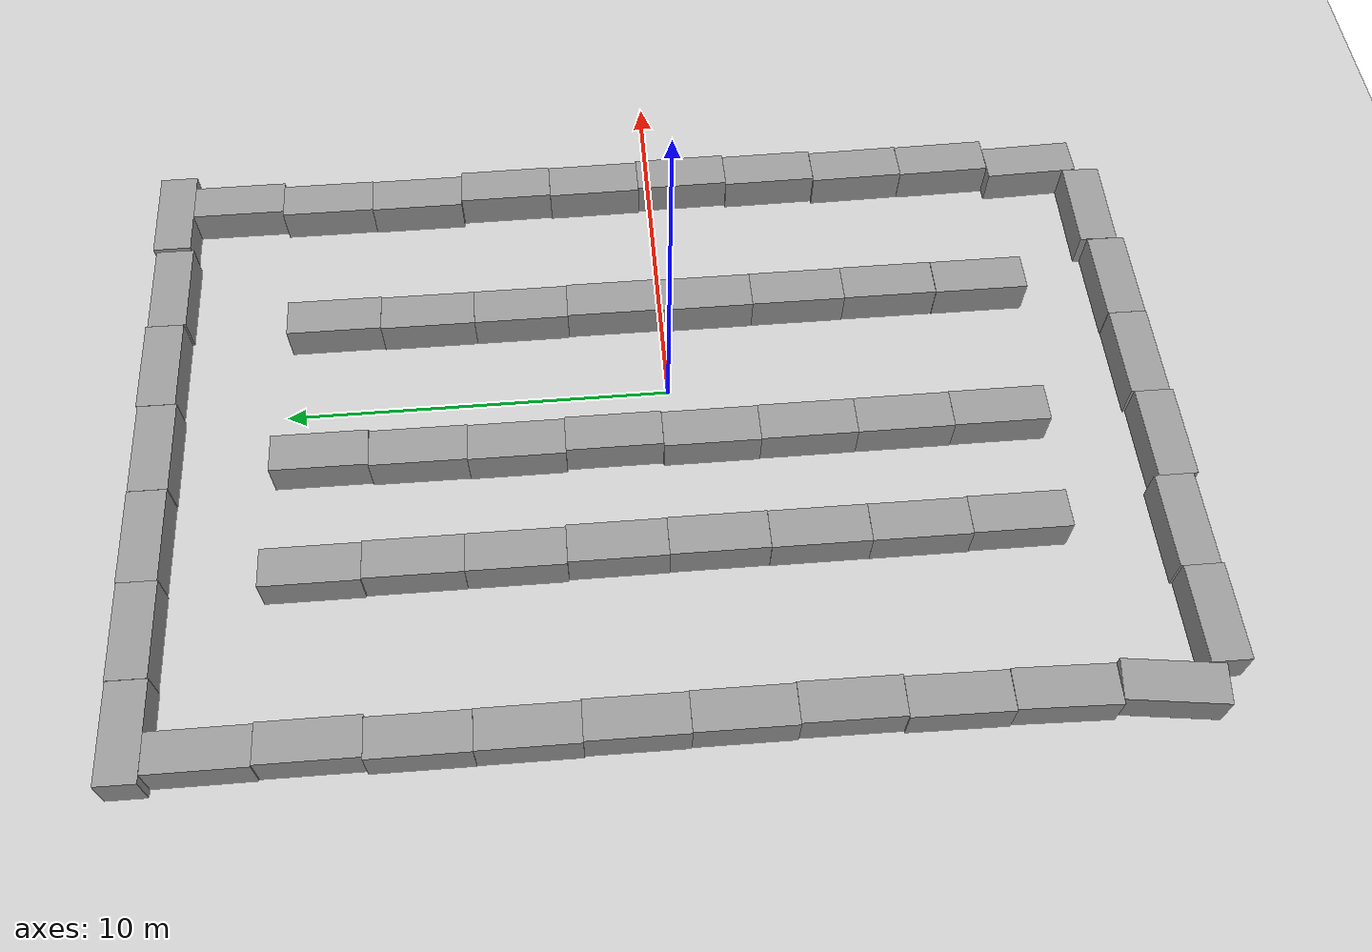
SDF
<sdf version="1.6">
 <world name="default">
  <light name="sun" type="directional">
   <pose>0 0 10 0 -0 0</pose>
   <diffuse>0.8 0.8 0.8 1</diffuse>
   <specular>0.1 0.1 0.1 1</specular>
   <attenuation>
    <range>1000</range>
    <constant>0.9</constant>
    <linear>0.01</linear>
    <quadratic>0.001</quadratic>
   </attenuation>
   <direction>-0.5 0.5 -1</direction>
  </light>
  <model name="ground_plane">
   <static>1</static>
   <link name="link">
    <collision name="collision">
     <geometry><plane><normal>0 0 1</normal><size>100 100</size></plane></geometry>
     <surface><friction><ode><mu>100</mu><mu2>50</mu2></ode></friction></surface>
    </collision>
    <visual name="visual">
     <cast_shadows>0</cast_shadows>
     <geometry><plane><normal>0 0 1</normal><size>100 100</size></plane></geometry>
     <material>
      <script><uri>file://media/materials/scripts/gazebo.material</uri><name>Gazebo/Grey</name></script>
     </material>
    </visual>
   </link>
  </model>
  <gravity>0 0 -9.8</gravity>
  <magnetic_field>6e-06 2.3e-05 -4.2e-05</magnetic_field>
  <atmosphere type="adiabatic"/>
  <physics name="default_physics" default="0" type="ode">
   <max_step_size>0.001</max_step_size>
   <real_time_factor>1</real_time_factor>
   <real_time_update_rate>1000</real_time_update_rate>
  </physics>
  <scene><ambient>0.4 0.4 0.4 1</ambient><background>0.7 0.7 0.7 1</background><shadows>1</shadows></scene>
  <spherical_coordinates>
   <surface_model>EARTH_WGS84</surface_model>
   <latitude_deg>0</latitude_deg>
   <longitude_deg>0</longitude_deg>
   <elevation>0</elevation>
   <heading_deg>0</heading_deg>
  </spherical_coordinates>
  <model name="unit_box_0">
   <pose>2.53274 1.2958 0.499996 0 -9e-06 -0.000531</pose>
   <link name="link">
    <inertial>
     <mass>1</mass>
     <inertia>
      <ixx>0.166667</ixx>
      <ixy>0</ixy>
      <ixz>0</ixz>
      <iyy>0.166667</iyy>
      <iyz>0</iyz>
      <izz>0.166667</izz>
     </inertia>
    </inertial>
    <collision name="collision"><geometry><box><size>1 2.47499 1</size></box></geometry></collision>
    <visual name="visual">
     <geometry><box><size>1 2.47499 1</size></box></geometry>
     <material>
      <script><name>Gazebo/Grey</name><uri>file://media/materials/scripts/gazebo.material</uri></script>
     </material>
    </visual>
   </link>
  </model>
  <model name="unit_box_0_clone">
   <pose>2.5103 -1.17976 0.499941 -4.8e-05 -0 -0.000157</pose>
   <link name="link">
    <inertial>
     <mass>1</mass>
     <inertia>
      <ixx>0.166667</ixx>
      <ixy>0</ixy>
      <ixz>0</ixz>
      <iyy>0.166667</iyy>
      <iyz>0</iyz>
      <izz>0.166667</izz>
     </inertia>
    </inertial>
    <collision name="collision"><geometry><box><size>1 2.47499 1</size></box></geometry></collision>
    <visual name="visual">
     <geometry><box><size>1 2.47499 1</size></box></geometry>
     <material>
      <script><name>Gazebo/Grey</name><uri>file://media/materials/scripts/gazebo.material</uri></script>
     </material>
    </visual>
   </link>
  </model>
  <model name="unit_box_0_clone_0">
   <pose>2.51817 -3.65509 0.499996 -0 -9e-06 0.000139</pose>
   <link name="link">
    <inertial>
     <mass>1</mass>
     <inertia>
      <ixx>0.166667</ixx>
      <ixy>0</ixy>
      <ixz>0</ixz>
      <iyy>0.166667</iyy>
      <iyz>0</iyz>
      <izz>0.166667</izz>
     </inertia>
    </inertial>
    <collision name="collision"><geometry><box><size>1 2.47499 1</size></box></geometry></collision>
    <visual name="visual">
     <geometry><box><size>1 2.47499 1</size></box></geometry>
     <material>
      <script><name>Gazebo/Grey</name><uri>file://media/materials/scripts/gazebo.material</uri></script>
     </material>
    </visual>
   </link>
  </model>
  <model name="unit_box_0_clone_1">
   <pose>2.5284 -6.13075 0.5 0 -0 0.001062</pose>
   <link name="link">
    <inertial>
     <mass>1</mass>
     <inertia>
      <ixx>0.166667</ixx>
      <ixy>0</ixy>
      <ixz>0</ixz>
      <iyy>0.166667</iyy>
      <iyz>0</iyz>
      <izz>0.166667</izz>
     </inertia>
    </inertial>
    <collision name="collision"><geometry><box><size>1 2.47499 1</size></box></geometry></collision>
    <visual name="visual">
     <geometry><box><size>1 2.47499 1</size></box></geometry>
     <material>
      <script><name>Gazebo/Grey</name><uri>file://media/materials/scripts/gazebo.material</uri></script>
     </material>
    </visual>
   </link>
  </model>
  <model name="unit_box_0_clone_2">
   <pose>2.52285 -8.61343 0.499941 -4.8e-05 0 0.000607</pose>
   <link name="link">
    <inertial>
     <mass>1</mass>
     <inertia>
      <ixx>0.166667</ixx>
      <ixy>0</ixy>
      <ixz>0</ixz>
      <iyy>0.166667</iyy>
      <iyz>0</iyz>
      <izz>0.166667</izz>
     </inertia>
    </inertial>
    <collision name="collision"><geometry><box><size>1 2.47499 1</size></box></geometry></collision>
    <visual name="visual">
     <geometry><box><size>1 2.47499 1</size></box></geometry>
     <material>
      <script><name>Gazebo/Grey</name><uri>file://media/materials/scripts/gazebo.material</uri></script>
     </material>
    </visual>
   </link>
  </model>
  <model name="unit_box_0_clone_3">
   <pose>2.50326 3.77082 0.499996 0 9e-06 -0.000504</pose>
   <link name="link">
    <inertial>
     <mass>1</mass>
     <inertia>
      <ixx>0.166667</ixx>
      <ixy>0</ixy>
      <ixz>0</ixz>
      <iyy>0.166667</iyy>
      <iyz>0</iyz>
      <izz>0.166667</izz>
     </inertia>
    </inertial>
    <collision name="collision"><geometry><box><size>1 2.47499 1</size></box></geometry></collision>
    <visual name="visual">
     <geometry><box><size>1 2.47499 1</size></box></geometry>
     <material>
      <script><name>Gazebo/Grey</name><uri>file://media/materials/scripts/gazebo.material</uri></script>
     </material>
    </visual>
   </link>
  </model>
  <model name="unit_box_0_clone_4">
   <pose>2.50069 6.2464 0.499941 4.8e-05 -0 -0.000192</pose>
   <link name="link">
    <inertial>
     <mass>1</mass>
     <inertia>
      <ixx>0.166667</ixx>
      <ixy>0</ixy>
      <ixz>0</ixz>
      <iyy>0.166667</iyy>
      <iyz>0</iyz>
      <izz>0.166667</izz>
     </inertia>
    </inertial>
    <collision name="collision"><geometry><box><size>1 2.47499 1</size></box></geometry></collision>
    <visual name="visual">
     <geometry><box><size>1 2.47499 1</size></box></geometry>
     <material>
      <script><name>Gazebo/Grey</name><uri>file://media/materials/scripts/gazebo.material</uri></script>
     </material>
    </visual>
   </link>
  </model>
  <model name="unit_box_0_clone_5">
   <pose>2.53478 8.72224 0.499996 0 -9e-06 -0.001185</pose>
   <link name="link">
    <inertial>
     <mass>1</mass>
     <inertia>
      <ixx>0.166667</ixx>
      <ixy>0</ixy>
      <ixz>0</ixz>
      <iyy>0.166667</iyy>
      <iyz>0</iyz>
      <izz>0.166667</izz>
     </inertia>
    </inertial>
    <collision name="collision"><geometry><box><size>1 2.47499 1</size></box></geometry></collision>
    <visual name="visual">
     <geometry><box><size>1 2.47499 1</size></box></geometry>
     <material>
      <script><name>Gazebo/Grey</name><uri>file://media/materials/scripts/gazebo.material</uri></script>
     </material>
    </visual>
   </link>
  </model>
  <model name="unit_box_0_clone_6">
   <pose>-1.59223 8.97329 0.49994 4.8e-05 -0 -0.002169</pose>
   <link name="link">
    <inertial>
     <mass>1</mass>
     <inertia>
      <ixx>0.166667</ixx>
      <ixy>0</ixy>
      <ixz>0</ixz>
      <iyy>0.166667</iyy>
      <iyz>0</iyz>
      <izz>0.166667</izz>
     </inertia>
    </inertial>
    <collision name="collision"><geometry><box><size>1 2.47499 1</size></box></geometry></collision>
    <visual name="visual">
     <geometry><box><size>1 2.47499 1</size></box></geometry>
     <material>
      <script><name>Gazebo/Grey</name><uri>file://media/materials/scripts/gazebo.material</uri></script>
     </material>
    </visual>
   </link>
  </model>
  <model name="unit_box_0_clone_7">
   <pose>-1.64276 6.49241 0.499941 -4.8e-05 -0 -0.002144</pose>
   <link name="link">
    <inertial>
     <mass>1</mass>
     <inertia>
      <ixx>0.166667</ixx>
      <ixy>0</ixy>
      <ixz>0</ixz>
      <iyy>0.166667</iyy>
      <iyz>0</iyz>
      <izz>0.166667</izz>
     </inertia>
    </inertial>
    <collision name="collision"><geometry><box><size>1 2.47499 1</size></box></geometry></collision>
    <visual name="visual">
     <geometry><box><size>1 2.47499 1</size></box></geometry>
     <material>
      <script><name>Gazebo/Grey</name><uri>file://media/materials/scripts/gazebo.material</uri></script>
     </material>
    </visual>
   </link>
  </model>
  <model name="unit_box_0_clone_8">
   <pose>-1.66384 4.01631 0.499996 -0 -7e-06 -0.000125</pose>
   <link name="link">
    <inertial>
     <mass>1</mass>
     <inertia>
      <ixx>0.166667</ixx>
      <ixy>0</ixy>
      <ixz>0</ixz>
      <iyy>0.166667</iyy>
      <iyz>0</iyz>
      <izz>0.166667</izz>
     </inertia>
    </inertial>
    <collision name="collision"><geometry><box><size>1 2.47499 1</size></box></geometry></collision>
    <visual name="visual">
     <geometry><box><size>1 2.47499 1</size></box></geometry>
     <material>
      <script><name>Gazebo/Grey</name><uri>file://media/materials/scripts/gazebo.material</uri></script>
     </material>
    </visual>
   </link>
  </model>
  <model name="unit_box_0_clone_9">
   <pose>-1.60487 1.5413 0.499962 -3e-05 -0 -8.2e-05</pose>
   <link name="link">
    <inertial>
     <mass>1</mass>
     <inertia>
      <ixx>0.166667</ixx>
      <ixy>0</ixy>
      <ixz>0</ixz>
      <iyy>0.166667</iyy>
      <iyz>0</iyz>
      <izz>0.166667</izz>
     </inertia>
    </inertial>
    <collision name="collision"><geometry><box><size>0.96663 2.47499 1</size></box></geometry></collision>
    <visual name="visual">
     <geometry><box><size>0.96663 2.47499 1</size></box></geometry>
     <material>
      <script><name>Gazebo/Grey</name><uri>file://media/materials/scripts/gazebo.material</uri></script>
     </material>
    </visual>
   </link>
  </model>
  <model name="unit_box_0_clone_10">
   <pose>-1.658 -0.933845 0.5 0 0 -8.2e-05</pose>
   <link name="link">
    <inertial>
     <mass>1</mass>
     <inertia>
      <ixx>0.166667</ixx>
      <ixy>0</ixy>
      <ixz>0</ixz>
      <iyy>0.166667</iyy>
      <iyz>0</iyz>
      <izz>0.166667</izz>
     </inertia>
    </inertial>
    <collision name="collision"><geometry><box><size>1 2.47499 1</size></box></geometry></collision>
    <visual name="visual">
     <geometry><box><size>1 2.47499 1</size></box></geometry>
     <material>
      <script><name>Gazebo/Grey</name><uri>file://media/materials/scripts/gazebo.material</uri></script>
     </material>
    </visual>
   </link>
  </model>
  <model name="unit_box_0_clone_11">
   <pose>-1.6432 -3.409 0.5 0 -0 0.000234</pose>
   <link name="link">
    <inertial>
     <mass>1</mass>
     <inertia>
      <ixx>0.166667</ixx>
      <ixy>0</ixy>
      <ixz>0</ixz>
      <iyy>0.166667</iyy>
      <iyz>0</iyz>
      <izz>0.166667</izz>
     </inertia>
    </inertial>
    <collision name="collision"><geometry><box><size>1 2.47499 1</size></box></geometry></collision>
    <visual name="visual">
     <geometry><box><size>1 2.47499 1</size></box></geometry>
     <material>
      <script><name>Gazebo/Grey</name><uri>file://media/materials/scripts/gazebo.material</uri></script>
     </material>
    </visual>
   </link>
  </model>
  <model name="unit_box_0_clone_12">
   <pose>-1.63969 -5.88438 0.499996 0 9e-06 0.000602</pose>
   <link name="link">
    <inertial>
     <mass>1</mass>
     <inertia>
      <ixx>0.166667</ixx>
      <ixy>0</ixy>
      <ixz>0</ixz>
      <iyy>0.166667</iyy>
      <iyz>0</iyz>
      <izz>0.166667</izz>
     </inertia>
    </inertial>
    <collision name="collision"><geometry><box><size>1 2.47499 1</size></box></geometry></collision>
    <visual name="visual">
     <geometry><box><size>1 2.47499 1</size></box></geometry>
     <material>
      <script><name>Gazebo/Grey</name><uri>file://media/materials/scripts/gazebo.material</uri></script>
     </material>
    </visual>
   </link>
  </model>
  <model name="unit_box_0_clone_13">
   <pose>-1.62475 -8.35985 0.499941 4.8e-05 -0 0.000626</pose>
   <link name="link">
    <inertial>
     <mass>1</mass>
     <inertia>
      <ixx>0.166667</ixx>
      <ixy>0</ixy>
      <ixz>0</ixz>
      <iyy>0.166667</iyy>
      <iyz>0</iyz>
      <izz>0.166667</izz>
     </inertia>
    </inertial>
    <collision name="collision"><geometry><box><size>1 2.47499 1</size></box></geometry></collision>
    <visual name="visual">
     <geometry><box><size>1 2.47499 1</size></box></geometry>
     <material>
      <script><name>Gazebo/Grey</name><uri>file://media/materials/scripts/gazebo.material</uri></script>
     </material>
    </visual>
   </link>
  </model>
  <model name="unit_box_0_clone_14">
   <pose>-4.68339 -8.25334 0.499996 0 -9e-06 -0.0012</pose>
   <link name="link">
    <inertial>
     <mass>1</mass>
     <inertia>
      <ixx>0.166667</ixx>
      <ixy>0</ixy>
      <ixz>0</ixz>
      <iyy>0.166667</iyy>
      <iyz>0</iyz>
      <izz>0.166667</izz>
     </inertia>
    </inertial>
    <collision name="collision"><geometry><box><size>1 2.47499 1</size></box></geometry></collision>
    <visual name="visual">
     <geometry><box><size>1 2.47499 1</size></box></geometry>
     <material>
      <script><name>Gazebo/Grey</name><uri>file://media/materials/scripts/gazebo.material</uri></script>
     </material>
    </visual>
   </link>
  </model>
  <model name="unit_box_0_clone_15">
   <pose>-4.69999 -5.77827 0.499996 0 -9e-06 -0.001317</pose>
   <link name="link">
    <inertial>
     <mass>1</mass>
     <inertia>
      <ixx>0.166667</ixx>
      <ixy>0</ixy>
      <ixz>0</ixz>
      <iyy>0.166667</iyy>
      <iyz>0</iyz>
      <izz>0.166667</izz>
     </inertia>
    </inertial>
    <collision name="collision"><geometry><box><size>1 2.47499 1</size></box></geometry></collision>
    <visual name="visual">
     <geometry><box><size>1 2.47499 1</size></box></geometry>
     <material>
      <script><name>Gazebo/Grey</name><uri>file://media/materials/scripts/gazebo.material</uri></script>
     </material>
    </visual>
   </link>
  </model>
  <model name="unit_box_0_clone_16">
   <pose>-4.69405 -3.30228 0.499996 0 -9e-06 -0.001065</pose>
   <link name="link">
    <inertial>
     <mass>1</mass>
     <inertia>
      <ixx>0.166667</ixx>
      <ixy>0</ixy>
      <ixz>0</ixz>
      <iyy>0.166667</iyy>
      <iyz>0</iyz>
      <izz>0.166667</izz>
     </inertia>
    </inertial>
    <collision name="collision"><geometry><box><size>1 2.47499 1</size></box></geometry></collision>
    <visual name="visual">
     <geometry><box><size>1 2.47499 1</size></box></geometry>
     <material>
      <script><name>Gazebo/Grey</name><uri>file://media/materials/scripts/gazebo.material</uri></script>
     </material>
    </visual>
   </link>
  </model>
  <model name="unit_box_0_clone_17">
   <pose>-4.68117 -0.825741 0.5 0 0 -0.000908</pose>
   <link name="link">
    <inertial>
     <mass>1</mass>
     <inertia>
      <ixx>0.166667</ixx>
      <ixy>0</ixy>
      <ixz>0</ixz>
      <iyy>0.166667</iyy>
      <iyz>0</iyz>
      <izz>0.166667</izz>
     </inertia>
    </inertial>
    <collision name="collision"><geometry><box><size>1 2.47499 1</size></box></geometry></collision>
    <visual name="visual">
     <geometry><box><size>1 2.47499 1</size></box></geometry>
     <material>
      <script><name>Gazebo/Grey</name><uri>file://media/materials/scripts/gazebo.material</uri></script>
     </material>
    </visual>
   </link>
  </model>
  <model name="unit_box_0_clone_18">
   <pose>-4.69188 1.64966 0.499996 0 9e-06 -0.000899</pose>
   <link name="link">
    <inertial>
     <mass>1</mass>
     <inertia>
      <ixx>0.166667</ixx>
      <ixy>0</ixy>
      <ixz>0</ixz>
      <iyy>0.166667</iyy>
      <iyz>0</iyz>
      <izz>0.166667</izz>
     </inertia>
    </inertial>
    <collision name="collision"><geometry><box><size>1 2.47499 1</size></box></geometry></collision>
    <visual name="visual">
     <geometry><box><size>1 2.47499 1</size></box></geometry>
     <material>
      <script><name>Gazebo/Grey</name><uri>file://media/materials/scripts/gazebo.material</uri></script>
     </material>
    </visual>
   </link>
  </model>
  <model name="unit_box_0_clone_19">
   <pose>-4.73635 4.12548 0.499996 -0 -9e-06 -0.002474</pose>
   <link name="link">
    <inertial>
     <mass>1</mass>
     <inertia>
      <ixx>0.166667</ixx>
      <ixy>0</ixy>
      <ixz>0</ixz>
      <iyy>0.166667</iyy>
      <iyz>0</iyz>
      <izz>0.166667</izz>
     </inertia>
    </inertial>
    <collision name="collision"><geometry><box><size>1 2.47499 1</size></box></geometry></collision>
    <visual name="visual">
     <geometry><box><size>1 2.47499 1</size></box></geometry>
     <material>
      <script><name>Gazebo/Grey</name><uri>file://media/materials/scripts/gazebo.material</uri></script>
     </material>
    </visual>
   </link>
  </model>
  <model name="unit_box_0_clone_20">
   <pose>-4.73555 6.60053 0.499996 -0 -9e-06 -0.002586</pose>
   <link name="link">
    <inertial>
     <mass>1</mass>
     <inertia>
      <ixx>0.166667</ixx>
      <ixy>0</ixy>
      <ixz>0</ixz>
      <iyy>0.166667</iyy>
      <iyz>0</iyz>
      <izz>0.166667</izz>
     </inertia>
    </inertial>
    <collision name="collision"><geometry><box><size>1 2.47499 1</size></box></geometry></collision>
    <visual name="visual">
     <geometry><box><size>1 2.47499 1</size></box></geometry>
     <material>
      <script><name>Gazebo/Grey</name><uri>file://media/materials/scripts/gazebo.material</uri></script>
     </material>
    </visual>
   </link>
  </model>
  <model name="unit_box_0_clone_21">
   <pose>-4.76207 9.07612 0.5 0 0 -0.002592</pose>
   <link name="link">
    <inertial>
     <mass>1</mass>
     <inertia>
      <ixx>0.166667</ixx>
      <ixy>0</ixy>
      <ixz>0</ixz>
      <iyy>0.166667</iyy>
      <iyz>0</iyz>
      <izz>0.166667</izz>
     </inertia>
    </inertial>
    <collision name="collision"><geometry><box><size>1 2.47499 1</size></box></geometry></collision>
    <visual name="visual">
     <geometry><box><size>1 2.47499 1</size></box></geometry>
     <material>
      <script><name>Gazebo/Grey</name><uri>file://media/materials/scripts/gazebo.material</uri></script>
     </material>
    </visual>
   </link>
  </model>
  <model name="unit_box_0_clone_22">
   <pose>-9.22827 -8.39854 0.499941 4.8e-05 -0 -0.025891</pose>
   <link name="link">
    <inertial>
     <mass>1</mass>
     <inertia>
      <ixx>0.166667</ixx>
      <ixy>0</ixy>
      <ixz>0</ixz>
      <iyy>0.166667</iyy>
      <iyz>0</iyz>
      <izz>0.166667</izz>
     </inertia>
    </inertial>
    <collision name="collision"><geometry><box><size>1 2.47499 1</size></box></geometry></collision>
    <visual name="visual">
     <geometry><box><size>1 2.47499 1</size></box></geometry>
     <material>
      <script><name>Gazebo/Grey</name><uri>file://media/materials/scripts/gazebo.material</uri></script>
     </material>
    </visual>
   </link>
  </model>
  <model name="unit_box_0_clone_23">
   <pose>-9.20916 -5.91719 0.5 0 0 -0.012951</pose>
   <link name="link">
    <inertial>
     <mass>1</mass>
     <inertia>
      <ixx>0.166667</ixx>
      <ixy>0</ixy>
      <ixz>0</ixz>
      <iyy>0.166667</iyy>
      <iyz>0</iyz>
      <izz>0.166667</izz>
     </inertia>
    </inertial>
    <collision name="collision"><geometry><box><size>1 2.47499 1</size></box></geometry></collision>
    <visual name="visual">
     <geometry><box><size>1 2.47499 1</size></box></geometry>
     <material>
      <script><name>Gazebo/Grey</name><uri>file://media/materials/scripts/gazebo.material</uri></script>
     </material>
    </visual>
   </link>
  </model>
  <model name="unit_box_0_clone_24">
   <pose>-9.14055 -3.44053 0.5 0 0 -0.008291</pose>
   <link name="link">
    <inertial>
     <mass>1</mass>
     <inertia>
      <ixx>0.166667</ixx>
      <ixy>0</ixy>
      <ixz>0</ixz>
      <iyy>0.166667</iyy>
      <iyz>0</iyz>
      <izz>0.166667</izz>
     </inertia>
    </inertial>
    <collision name="collision"><geometry><box><size>1 2.47499 1</size></box></geometry></collision>
    <visual name="visual">
     <geometry><box><size>1 2.47499 1</size></box></geometry>
     <material>
      <script><name>Gazebo/Grey</name><uri>file://media/materials/scripts/gazebo.material</uri></script>
     </material>
    </visual>
   </link>
  </model>
  <model name="unit_box_0_clone_25">
   <pose>-9.15878 -0.963245 0.5 0 0 -0.004206</pose>
   <link name="link">
    <inertial>
     <mass>1</mass>
     <inertia>
      <ixx>0.166667</ixx>
      <ixy>0</ixy>
      <ixz>0</ixz>
      <iyy>0.166667</iyy>
      <iyz>0</iyz>
      <izz>0.166667</izz>
     </inertia>
    </inertial>
    <collision name="collision"><geometry><box><size>1 2.47499 1</size></box></geometry></collision>
    <visual name="visual">
     <geometry><box><size>1 2.47499 1</size></box></geometry>
     <material>
      <script><name>Gazebo/Grey</name><uri>file://media/materials/scripts/gazebo.material</uri></script>
     </material>
    </visual>
   </link>
  </model>
  <model name="unit_box_0_clone_26">
   <pose>-9.16762 1.51208 0.499996 0 9e-06 -0.003754</pose>
   <link name="link">
    <inertial>
     <mass>1</mass>
     <inertia>
      <ixx>0.166667</ixx>
      <ixy>0</ixy>
      <ixz>0</ixz>
      <iyy>0.166667</iyy>
      <iyz>0</iyz>
      <izz>0.166667</izz>
     </inertia>
    </inertial>
    <collision name="collision"><geometry><box><size>1 2.47499 1</size></box></geometry></collision>
    <visual name="visual">
     <geometry><box><size>1 2.47499 1</size></box></geometry>
     <material>
      <script><name>Gazebo/Grey</name><uri>file://media/materials/scripts/gazebo.material</uri></script>
     </material>
    </visual>
   </link>
  </model>
  <model name="unit_box_0_clone_27">
   <pose>-9.19439 3.9876 0.499996 -0 9e-06 -0.002978</pose>
   <link name="link">
    <inertial>
     <mass>1</mass>
     <inertia>
      <ixx>0.166667</ixx>
      <ixy>0</ixy>
      <ixz>0</ixz>
      <iyy>0.166667</iyy>
      <iyz>0</iyz>
      <izz>0.166667</izz>
     </inertia>
    </inertial>
    <collision name="collision"><geometry><box><size>1 2.47499 1</size></box></geometry></collision>
    <visual name="visual">
     <geometry><box><size>1 2.47499 1</size></box></geometry>
     <material>
      <script><name>Gazebo/Grey</name><uri>file://media/materials/scripts/gazebo.material</uri></script>
     </material>
    </visual>
   </link>
  </model>
  <model name="unit_box_0_clone_28">
   <pose>-9.19836 6.4631 0.499941 4.8e-05 -0 -0.002251</pose>
   <link name="link">
    <inertial>
     <mass>1</mass>
     <inertia>
      <ixx>0.166667</ixx>
      <ixy>0</ixy>
      <ixz>0</ixz>
      <iyy>0.166667</iyy>
      <iyz>0</iyz>
      <izz>0.166667</izz>
     </inertia>
    </inertial>
    <collision name="collision"><geometry><box><size>1 2.47499 1</size></box></geometry></collision>
    <visual name="visual">
     <geometry><box><size>1 2.47499 1</size></box></geometry>
     <material>
      <script><name>Gazebo/Grey</name><uri>file://media/materials/scripts/gazebo.material</uri></script>
     </material>
    </visual>
   </link>
  </model>
  <model name="unit_box_0_clone_29">
   <pose>-9.12679 8.93864 0.499996 0 9e-06 -0.001552</pose>
   <link name="link">
    <inertial>
     <mass>1</mass>
     <inertia>
      <ixx>0.166667</ixx>
      <ixy>0</ixy>
      <ixz>0</ixz>
      <iyy>0.166667</iyy>
      <iyz>0</iyz>
      <izz>0.166667</izz>
     </inertia>
    </inertial>
    <collision name="collision"><geometry><box><size>1 2.47499 1</size></box></geometry></collision>
    <visual name="visual">
     <geometry><box><size>1 2.47499 1</size></box></geometry>
     <material>
      <script><name>Gazebo/Grey</name><uri>file://media/materials/scripts/gazebo.material</uri></script>
     </material>
    </visual>
   </link>
  </model>
  <model name="unit_box_0_clone_30">
   <pose>-9.30616 -10.9176 0.499995 2e-06 -5e-06 -0.128867</pose>
   <link name="link">
    <inertial>
     <mass>1</mass>
     <inertia>
      <ixx>0.166667</ixx>
      <ixy>0</ixy>
      <ixz>0</ixz>
      <iyy>0.166667</iyy>
      <iyz>0</iyz>
      <izz>0.166667</izz>
     </inertia>
    </inertial>
    <collision name="collision"><geometry><box><size>1 2.47499 1</size></box></geometry></collision>
    <visual name="visual">
     <geometry><box><size>1 2.47499 1</size></box></geometry>
     <material>
      <script><name>Gazebo/Grey</name><uri>file://media/materials/scripts/gazebo.material</uri></script>
     </material>
    </visual>
   </link>
  </model>
  <model name="unit_box_0_clone_31">
   <pose>-9.15979 11.4145 0.499941 4.8e-05 -0 0.000176</pose>
   <link name="link">
    <inertial>
     <mass>1</mass>
     <inertia>
      <ixx>0.166667</ixx>
      <ixy>0</ixy>
      <ixz>0</ixz>
      <iyy>0.166667</iyy>
      <iyz>0</iyz>
      <izz>0.166667</izz>
     </inertia>
    </inertial>
    <collision name="collision"><geometry><box><size>1 2.47499 1</size></box></geometry></collision>
    <visual name="visual">
     <geometry><box><size>1 2.47499 1</size></box></geometry>
     <material>
      <script><name>Gazebo/Grey</name><uri>file://media/materials/scripts/gazebo.material</uri></script>
     </material>
    </visual>
   </link>
  </model>
  <model name="unit_box_0_clone_32">
   <pose>-8.61357 13.1521 0.499995 -2e-06 6e-06 -1.57321</pose>
   <link name="link">
    <inertial>
     <mass>1</mass>
     <inertia>
      <ixx>0.166667</ixx>
      <ixy>0</ixy>
      <ixz>0</ixz>
      <iyy>0.166667</iyy>
      <iyz>0</iyz>
      <izz>0.166667</izz>
     </inertia>
    </inertial>
    <collision name="collision"><geometry><box><size>1 2.47499 1</size></box></geometry></collision>
    <visual name="visual">
     <geometry><box><size>1 2.47499 1</size></box></geometry>
     <material>
      <script><name>Gazebo/Grey</name><uri>file://media/materials/scripts/gazebo.material</uri></script>
     </material>
    </visual>
   </link>
  </model>
  <model name="unit_box_0_clone_32_clone">
   <pose>-6.13431 13.1683 0.499941 -4.8e-05 -0 -1.57295</pose>
   <link name="link">
    <inertial>
     <mass>1</mass>
     <inertia>
      <ixx>0.166667</ixx>
      <ixy>0</ixy>
      <ixz>0</ixz>
      <iyy>0.166667</iyy>
      <iyz>0</iyz>
      <izz>0.166667</izz>
     </inertia>
    </inertial>
    <collision name="collision"><geometry><box><size>1 2.47499 1</size></box></geometry></collision>
    <visual name="visual">
     <geometry><box><size>1 2.47499 1</size></box></geometry>
     <material>
      <script><name>Gazebo/Grey</name><uri>file://media/materials/scripts/gazebo.material</uri></script>
     </material>
    </visual>
   </link>
  </model>
  <model name="unit_box_0_clone_32_clone_0">
   <pose>-3.65847 13.177 0.499995 -2e-06 6e-06 -1.57444</pose>
   <link name="link">
    <inertial>
     <mass>1</mass>
     <inertia>
      <ixx>0.166667</ixx>
      <ixy>0</ixy>
      <ixz>0</ixz>
      <iyy>0.166667</iyy>
      <iyz>0</iyz>
      <izz>0.166667</izz>
     </inertia>
    </inertial>
    <collision name="collision"><geometry><box><size>1 2.47499 1</size></box></geometry></collision>
    <visual name="visual">
     <geometry><box><size>1 2.47499 1</size></box></geometry>
     <material>
      <script><name>Gazebo/Grey</name><uri>file://media/materials/scripts/gazebo.material</uri></script>
     </material>
    </visual>
   </link>
  </model>
  <model name="unit_box_0_clone_32_clone_0_clone">
   <pose>-1.17991 13.1567 0.499941 -4.8e-05 -0 -1.5731</pose>
   <link name="link">
    <inertial>
     <mass>1</mass>
     <inertia>
      <ixx>0.166667</ixx>
      <ixy>0</ixy>
      <ixz>0</ixz>
      <iyy>0.166667</iyy>
      <iyz>0</iyz>
      <izz>0.166667</izz>
     </inertia>
    </inertial>
    <collision name="collision"><geometry><box><size>1 2.47499 1</size></box></geometry></collision>
    <visual name="visual">
     <geometry><box><size>1 2.47499 1</size></box></geometry>
     <material>
      <script><name>Gazebo/Grey</name><uri>file://media/materials/scripts/gazebo.material</uri></script>
     </material>
    </visual>
   </link>
  </model>
  <model name="unit_box_0_clone_32_clone_0_clone_0">
   <pose>1.29911 13.1885 0.499995 2e-06 -6e-06 -1.57457</pose>
   <link name="link">
    <inertial>
     <mass>1</mass>
     <inertia>
      <ixx>0.166667</ixx>
      <ixy>0</ixy>
      <ixz>0</ixz>
      <iyy>0.166667</iyy>
      <iyz>0</iyz>
      <izz>0.166667</izz>
     </inertia>
    </inertial>
    <collision name="collision"><geometry><box><size>1 2.47499 1</size></box></geometry></collision>
    <visual name="visual">
     <geometry><box><size>1 2.47499 1</size></box></geometry>
     <material>
      <script><name>Gazebo/Grey</name><uri>file://media/materials/scripts/gazebo.material</uri></script>
     </material>
    </visual>
   </link>
  </model>
  <model name="unit_box_0_clone_32_clone_0_clone_1">
   <pose>3.77609 13.133 0.499941 4.8e-05 -0 -1.57319</pose>
   <link name="link">
    <inertial>
     <mass>1</mass>
     <inertia>
      <ixx>0.166667</ixx>
      <ixy>0</ixy>
      <ixz>0</ixz>
      <iyy>0.166667</iyy>
      <iyz>0</iyz>
      <izz>0.166667</izz>
     </inertia>
    </inertial>
    <collision name="collision"><geometry><box><size>1 2.47499 1</size></box></geometry></collision>
    <visual name="visual">
     <geometry><box><size>1 2.47499 1</size></box></geometry>
     <material>
      <script><name>Gazebo/Grey</name><uri>file://media/materials/scripts/gazebo.material</uri></script>
     </material>
    </visual>
   </link>
  </model>
  <model name="unit_box_0_clone_32_clone_0_clone_2">
   <pose>-7.68452 -12.3494 0.499958 -3.4e-05 0 -1.569</pose>
   <link name="link">
    <inertial>
     <mass>1</mass>
     <inertia>
      <ixx>0.166667</ixx>
      <ixy>0</ixy>
      <ixz>0</ixz>
      <iyy>0.166667</iyy>
      <iyz>0</iyz>
      <izz>0.166667</izz>
     </inertia>
    </inertial>
    <collision name="collision"><geometry><box><size>1 2.47499 1</size></box></geometry></collision>
    <visual name="visual">
     <geometry><box><size>1 2.47499 1</size></box></geometry>
     <material>
      <script><name>Gazebo/Grey</name><uri>file://media/materials/scripts/gazebo.material</uri></script>
     </material>
    </visual>
   </link>
  </model>
  <model name="unit_box_0_clone_32_clone_0_clone_3">
   <pose>-5.20963 -12.2813 0.499996 1e-06 6e-06 -1.56905</pose>
   <link name="link">
    <inertial>
     <mass>1</mass>
     <inertia>
      <ixx>0.166667</ixx>
      <ixy>0</ixy>
      <ixz>0</ixz>
      <iyy>0.166667</iyy>
      <iyz>0</iyz>
      <izz>0.166667</izz>
     </inertia>
    </inertial>
    <collision name="collision"><geometry><box><size>1 2.47499 1</size></box></geometry></collision>
    <visual name="visual">
     <geometry><box><size>1 2.47499 1</size></box></geometry>
     <material>
      <script><name>Gazebo/Grey</name><uri>file://media/materials/scripts/gazebo.material</uri></script>
     </material>
    </visual>
   </link>
  </model>
  <model name="unit_box_0_clone_32_clone_0_clone_4">
   <pose>-2.7338 -12.4004 0.5 0 0 -1.57058</pose>
   <link name="link">
    <inertial>
     <mass>1</mass>
     <inertia>
      <ixx>0.166667</ixx>
      <ixy>0</ixy>
      <ixz>0</ixz>
      <iyy>0.166667</iyy>
      <iyz>0</iyz>
      <izz>0.166667</izz>
     </inertia>
    </inertial>
    <collision name="collision"><geometry><box><size>1 2.47499 1</size></box></geometry></collision>
    <visual name="visual">
     <geometry><box><size>1 2.47499 1</size></box></geometry>
     <material>
      <script><name>Gazebo/Grey</name><uri>file://media/materials/scripts/gazebo.material</uri></script>
     </material>
    </visual>
   </link>
  </model>
  <model name="unit_box_0_clone_32_clone_0_clone_5">
   <pose>-0.25822 -12.3286 0.5 0 0 -1.57178</pose>
   <link name="link">
    <inertial>
     <mass>1</mass>
     <inertia>
      <ixx>0.166667</ixx>
      <ixy>0</ixy>
      <ixz>0</ixz>
      <iyy>0.166667</iyy>
      <iyz>0</iyz>
      <izz>0.166667</izz>
     </inertia>
    </inertial>
    <collision name="collision"><geometry><box><size>1 2.47499 1</size></box></geometry></collision>
    <visual name="visual">
     <geometry><box><size>1 2.47499 1</size></box></geometry>
     <material>
      <script><name>Gazebo/Grey</name><uri>file://media/materials/scripts/gazebo.material</uri></script>
     </material>
    </visual>
   </link>
  </model>
  <model name="unit_box_0_clone_32_clone_0_clone_6">
   <pose>2.21873 -12.3192 0.5 0 0 -1.57533</pose>
   <link name="link">
    <inertial>
     <mass>1</mass>
     <inertia>
      <ixx>0.166667</ixx>
      <ixy>0</ixy>
      <ixz>0</ixz>
      <iyy>0.166667</iyy>
      <iyz>0</iyz>
      <izz>0.166667</izz>
     </inertia>
    </inertial>
    <collision name="collision"><geometry><box><size>1 2.47499 1</size></box></geometry></collision>
    <visual name="visual">
     <geometry><box><size>1 2.47499 1</size></box></geometry>
     <material>
      <script><name>Gazebo/Grey</name><uri>file://media/materials/scripts/gazebo.material</uri></script>
     </material>
    </visual>
   </link>
  </model>
  <model name="unit_box_0_clone_32_clone_0_clone_7">
   <pose>4.70359 -12.1696 0.499941 4.8e-05 -0 -1.58783</pose>
   <link name="link">
    <inertial>
     <mass>1</mass>
     <inertia>
      <ixx>0.166667</ixx>
      <ixy>0</ixy>
      <ixz>0</ixz>
      <iyy>0.166667</iyy>
      <iyz>0</iyz>
      <izz>0.166667</izz>
     </inertia>
    </inertial>
    <collision name="collision"><geometry><box><size>1 2.47499 1</size></box></geometry></collision>
    <visual name="visual">
     <geometry><box><size>1 2.47499 1</size></box></geometry>
     <material>
      <script><name>Gazebo/Grey</name><uri>file://media/materials/scripts/gazebo.material</uri></script>
     </material>
    </visual>
   </link>
  </model>
  <model name="unit_box_0_clone_25_clone">
   <pose>6.42618 -10.8019 0.5 0 -0 0.028206</pose>
   <link name="link">
    <inertial>
     <mass>1</mass>
     <inertia>
      <ixx>0.166667</ixx>
      <ixy>0</ixy>
      <ixz>0</ixz>
      <iyy>0.166667</iyy>
      <iyz>0</iyz>
      <izz>0.166667</izz>
     </inertia>
    </inertial>
    <collision name="collision"><geometry><box><size>1 2.47499 1</size></box></geometry></collision>
    <visual name="visual">
     <geometry><box><size>1 2.47499 1</size></box></geometry>
     <material>
      <script><name>Gazebo/Grey</name><uri>file://media/materials/scripts/gazebo.material</uri></script>
     </material>
    </visual>
   </link>
  </model>
  <model name="unit_box_0_clone_25_clone_0">
   <pose>6.67665 -8.3167 0.5 0 -0 0.016901</pose>
   <link name="link">
    <inertial>
     <mass>1</mass>
     <inertia>
      <ixx>0.166667</ixx>
      <ixy>0</ixy>
      <ixz>0</ixz>
      <iyy>0.166667</iyy>
      <iyz>0</iyz>
      <izz>0.166667</izz>
     </inertia>
    </inertial>
    <collision name="collision"><geometry><box><size>1 2.47499 1</size></box></geometry></collision>
    <visual name="visual">
     <geometry><box><size>1 2.47499 1</size></box></geometry>
     <material>
      <script><name>Gazebo/Grey</name><uri>file://media/materials/scripts/gazebo.material</uri></script>
     </material>
    </visual>
   </link>
  </model>
  <model name="unit_box_0_clone_25_clone_1">
   <pose>6.65296 -5.84143 0.499996 0 -9e-06 0.017495</pose>
   <link name="link">
    <inertial>
     <mass>1</mass>
     <inertia>
      <ixx>0.166667</ixx>
      <ixy>0</ixy>
      <ixz>0</ixz>
      <iyy>0.166667</iyy>
      <iyz>0</iyz>
      <izz>0.166667</izz>
     </inertia>
    </inertial>
    <collision name="collision"><geometry><box><size>1 2.47499 1</size></box></geometry></collision>
    <visual name="visual">
     <geometry><box><size>1 2.47499 1</size></box></geometry>
     <material>
      <script><name>Gazebo/Grey</name><uri>file://media/materials/scripts/gazebo.material</uri></script>
     </material>
    </visual>
   </link>
  </model>
  <model name="unit_box_0_clone_25_clone_2">
   <pose>6.70204 -3.36266 0.5 0 -0 0.011316</pose>
   <link name="link">
    <inertial>
     <mass>1</mass>
     <inertia>
      <ixx>0.166667</ixx>
      <ixy>0</ixy>
      <ixz>0</ixz>
      <iyy>0.166667</iyy>
      <iyz>0</iyz>
      <izz>0.166667</izz>
     </inertia>
    </inertial>
    <collision name="collision"><geometry><box><size>1 2.47499 1</size></box></geometry></collision>
    <visual name="visual">
     <geometry><box><size>1 2.47499 1</size></box></geometry>
     <material>
      <script><name>Gazebo/Grey</name><uri>file://media/materials/scripts/gazebo.material</uri></script>
     </material>
    </visual>
   </link>
  </model>
  <model name="unit_box_0_clone_25_clone_3">
   <pose>6.7444 -0.88658 0.499996 0 9e-06 0.010299</pose>
   <link name="link">
    <inertial>
     <mass>1</mass>
     <inertia>
      <ixx>0.166667</ixx>
      <ixy>0</ixy>
      <ixz>0</ixz>
      <iyy>0.166667</iyy>
      <iyz>0</iyz>
      <izz>0.166667</izz>
     </inertia>
    </inertial>
    <collision name="collision"><geometry><box><size>1 2.47499 1</size></box></geometry></collision>
    <visual name="visual">
     <geometry><box><size>1 2.47499 1</size></box></geometry>
     <material>
      <script><name>Gazebo/Grey</name><uri>file://media/materials/scripts/gazebo.material</uri></script>
     </material>
    </visual>
   </link>
  </model>
  <model name="unit_box_0_clone_25_clone_4">
   <pose>6.67176 1.58852 0.499996 0 9e-06 0.008834</pose>
   <link name="link">
    <inertial>
     <mass>1</mass>
     <inertia>
      <ixx>0.166667</ixx>
      <ixy>0</ixy>
      <ixz>0</ixz>
      <iyy>0.166667</iyy>
      <iyz>0</iyz>
      <izz>0.166667</izz>
     </inertia>
    </inertial>
    <collision name="collision"><geometry><box><size>1 2.47499 1</size></box></geometry></collision>
    <visual name="visual">
     <geometry><box><size>1 2.47499 1</size></box></geometry>
     <material>
      <script><name>Gazebo/Grey</name><uri>file://media/materials/scripts/gazebo.material</uri></script>
     </material>
    </visual>
   </link>
  </model>
  <model name="unit_box_0_clone_25_clone_5">
   <pose>6.68694 4.06517 0.499941 4.8e-05 0 0.005968</pose>
   <link name="link">
    <inertial>
     <mass>1</mass>
     <inertia>
      <ixx>0.166667</ixx>
      <ixy>0</ixy>
      <ixz>0</ixz>
      <iyy>0.166667</iyy>
      <iyz>0</iyz>
      <izz>0.166667</izz>
     </inertia>
    </inertial>
    <collision name="collision"><geometry><box><size>1 2.47499 1</size></box></geometry></collision>
    <visual name="visual">
     <geometry><box><size>1 2.47499 1</size></box></geometry>
     <material>
      <script><name>Gazebo/Grey</name><uri>file://media/materials/scripts/gazebo.material</uri></script>
     </material>
    </visual>
   </link>
  </model>
  <model name="unit_box_0_clone_25_clone_6">
   <pose>6.54915 6.5416 0.499941 4.8e-05 -0 0.002507</pose>
   <link name="link">
    <inertial>
     <mass>1</mass>
     <inertia>
      <ixx>0.166667</ixx>
      <ixy>0</ixy>
      <ixz>0</ixz>
      <iyy>0.166667</iyy>
      <iyz>0</iyz>
      <izz>0.166667</izz>
     </inertia>
    </inertial>
    <collision name="collision"><geometry><box><size>1 2.47499 1</size></box></geometry></collision>
    <visual name="visual">
     <geometry><box><size>1 2.47499 1</size></box></geometry>
     <material>
      <script><name>Gazebo/Grey</name><uri>file://media/materials/scripts/gazebo.material</uri></script>
     </material>
    </visual>
   </link>
  </model>
  <model name="unit_box_0_clone_25_clone_7">
   <pose>6.56421 9.01679 0.499996 0 9e-06 0.002389</pose>
   <link name="link">
    <inertial>
     <mass>1</mass>
     <inertia>
      <ixx>0.166667</ixx>
      <ixy>0</ixy>
      <ixz>0</ixz>
      <iyy>0.166667</iyy>
      <iyz>0</iyz>
      <izz>0.166667</izz>
     </inertia>
    </inertial>
    <collision name="collision"><geometry><box><size>1 2.47499 1</size></box></geometry></collision>
    <visual name="visual">
     <geometry><box><size>1 2.47499 1</size></box></geometry>
     <material>
      <script><name>Gazebo/Grey</name><uri>file://media/materials/scripts/gazebo.material</uri></script>
     </material>
    </visual>
   </link>
  </model>
  <model name="unit_box_0_clone_25_clone_8">
   <pose>6.6926 11.4923 0.499941 4.8e-05 -0 0.00181</pose>
   <link name="link">
    <inertial>
     <mass>1</mass>
     <inertia>
      <ixx>0.166667</ixx>
      <ixy>0</ixy>
      <ixz>0</ixz>
      <iyy>0.166667</iyy>
      <iyz>0</iyz>
      <izz>0.166667</izz>
     </inertia>
    </inertial>
    <collision name="collision"><geometry><box><size>1 2.47499 1</size></box></geometry></collision>
    <visual name="visual">
     <geometry><box><size>1 2.47499 1</size></box></geometry>
     <material>
      <script><name>Gazebo/Grey</name><uri>file://media/materials/scripts/gazebo.material</uri></script>
     </material>
    </visual>
   </link>
  </model>
  <model name="unit_box_0_clone_32_clone_0_clone_1_clone">
   <pose>6.34699 13.2294 0.499941 -4.8e-05 0 -1.56909</pose>
   <link name="link">
    <inertial>
     <mass>1</mass>
     <inertia>
      <ixx>0.166667</ixx>
      <ixy>0</ixy>
      <ixz>0</ixz>
      <iyy>0.166667</iyy>
      <iyz>0</iyz>
      <izz>0.166667</izz>
     </inertia>
    </inertial>
    <collision name="collision"><geometry><box><size>1 2.47499 1</size></box></geometry></collision>
    <visual name="visual">
     <geometry><box><size>1 2.47499 1</size></box></geometry>
     <material>
      <script><name>Gazebo/Grey</name><uri>file://media/materials/scripts/gazebo.material</uri></script>
     </material>
    </visual>
   </link>
  </model>
 </world>
</sdf>
